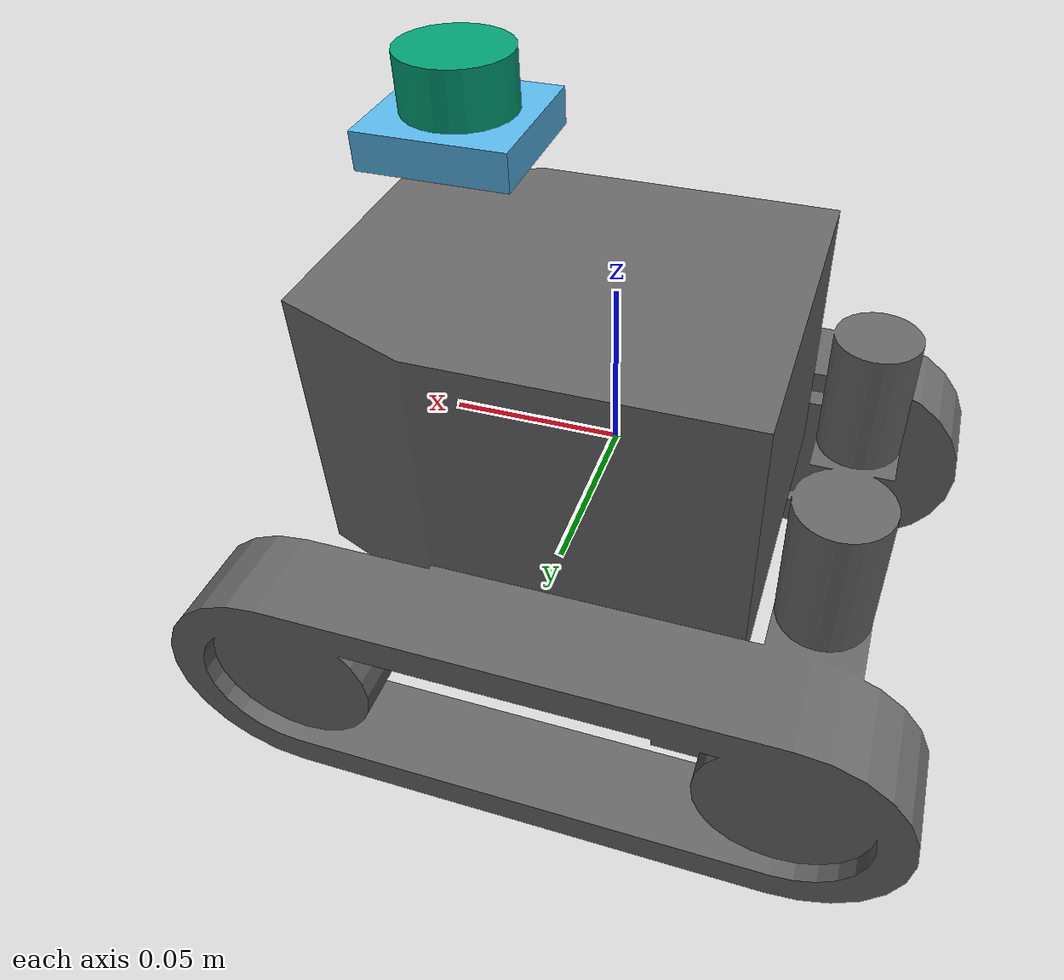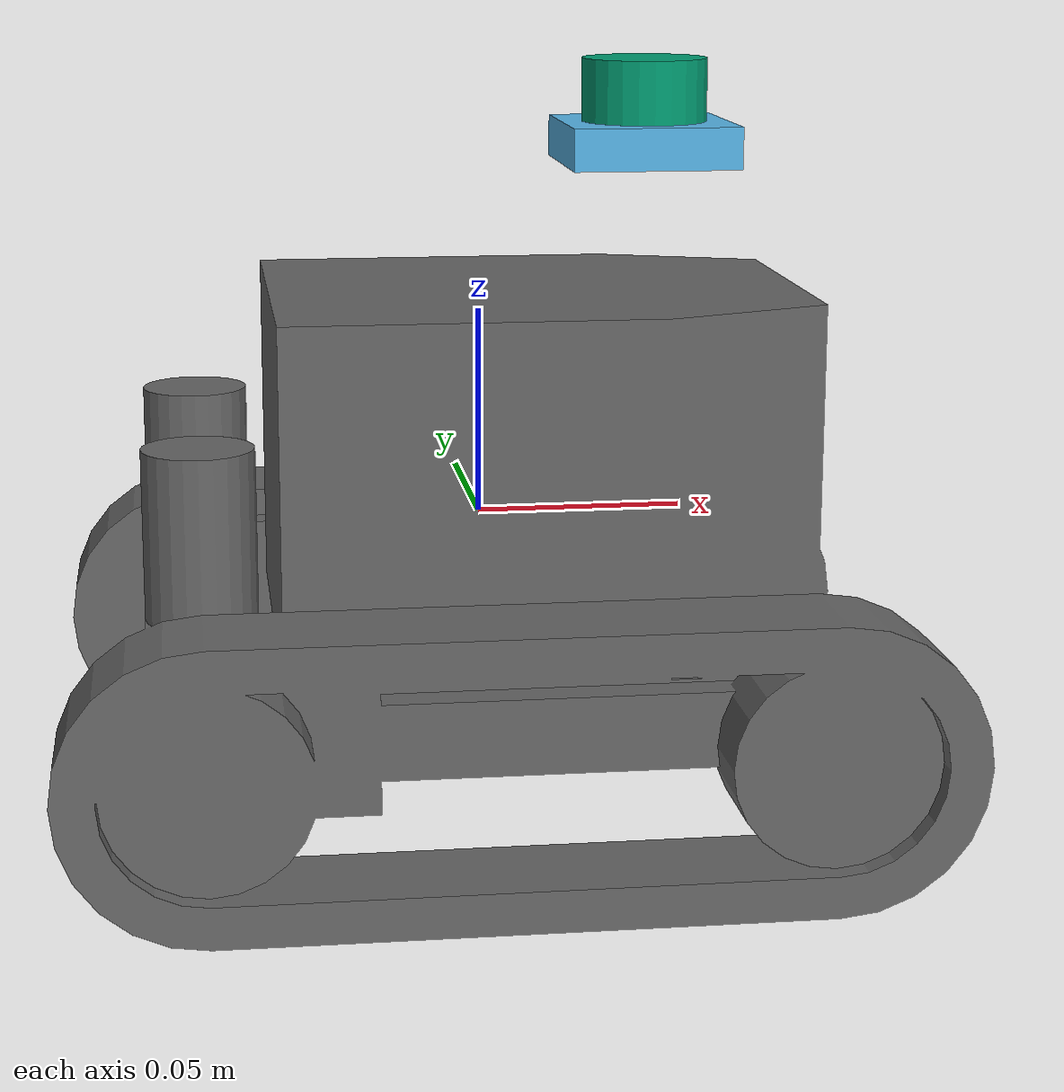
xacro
<?xml version="1.0"?>
<robot name="trip" xmlns:xacro="http://www.ros.org/wiki/xacro">
  <xacro:property name='PI_2' value='1.5707963267948966'/>
  <xacro:arg name="robot_name" default="trip" />

  <!-- Define the macro for the whole shelfino -->
  <xacro:macro name="trip" params='robot_name'>

      <xacro:include filename='components/chassis.xacro' />
      <xacro:include filename='components/lidar_scanner.xacro' />
      <xacro:include filename='components/camera.xacro' />
      <xacro:include filename='components/imu.xacro' />
      <xacro:include filename='components/wheels.xacro' />
      <xacro:include filename='components/trip.ros2_control.xacro' />
  </xacro:macro>

  <!-- Instantiate the model -->
  <xacro:trip robot_name="$(arg robot_name)" />

</robot>

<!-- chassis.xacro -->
<robot name="trip" xmlns:xacro="http://www.ros.org/wiki/xacro">
    <material name="light_black">
        <color rgba="0.4 0.4 0.4 1.0"/>
    </material>
    <material name="orange">
        <color rgba="1.0 0.4235 0.0392 1.0"/>
    </material>

    <!--  BASE LINK  -->
    <link name="${robot_name}/base_link">
    <inertial>
        <origin xyz="0 0 0" rpy="0 0 0"/>
        <mass value="5.0"/>
        <inertia
        ixx="0.05" ixy="0.0" ixz="0.0"
        iyy="0.05" iyz="0.0"
        izz="0.08"/>
    </inertial>

    <visual>
        <origin xyz="0.003 -0.002 -0.075" rpy="0 0 ${pi}"/>
        <geometry>
            <mesh filename="/home/davdori/trip_ws/src/TRIP-sim/trip_description/meshes/base_link.dae"/>
        </geometry>
        <material name="light_black"/>
    </visual>

    <collision>
        <origin xyz="-0.004 0 0" rpy="0 0 0"/>
        <geometry>
        <box size="0.16 0.103 0.11"/>
        </geometry>
    </collision>
    </link>
</robot>

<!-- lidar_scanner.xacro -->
<robot name="trip" xmlns:xacro="http://www.ros.org/wiki/xacro">

  <link name="${robot_name}/lidar_pitch_link">
    <visual>
      <geometry>
        <box size="0.04 0.04 0.01"/>
      </geometry>
    </visual>
    <inertial>
      <mass value="0.1"/>
      <inertia ixx="0.0005" iyy="0.0005" izz="0.0005"
              ixy="0" ixz="0" iyz="0"/>
    </inertial>
  </link>

  <link name="${robot_name}/lidar_link">
    <visual>
      <geometry>
        <cylinder radius="0.015" length="0.02"/>
      </geometry>
    </visual>
    <inertial>
      <mass value="0.01"/>
      <inertia
        ixx="1e-5" ixy="0.0" ixz="0.0"
        iyy="1e-5" iyz="0.0"
        izz="1e-5"/>
    </inertial>
  </link>

  <joint name="lidar_roll_joint" type="revolute">
    <parent link="${robot_name}/base_link"/>
    <child link="${robot_name}/lidar_pitch_link"/>
    <origin xyz="0.04 0 0.09" rpy="0 0 0"/>
    <axis xyz="1 0 0"/>
    <limit lower="-0.35" upper="0.35" effort="1.0" velocity="1.0"/>
  </joint>

  <joint name="lidar_mount_joint" type="fixed">
    <parent link="${robot_name}/lidar_pitch_link"/>
    <child link="${robot_name}/lidar_link"/>
    <origin xyz="0 0 0.01" rpy="0 0 0"/>
  </joint>

  <gazebo reference="${robot_name}/lidar_link">
    <sensor name="lidar_sensor" type="ray">
      <update_rate>10</update_rate>

      <ray>
        <scan>
          <horizontal>
            <samples>720</samples>
            <min_angle>-1.5708</min_angle>
            <max_angle>1.5708</max_angle>
          </horizontal>
        </scan>
        <range>
          <min>0.12</min>
          <max>30.0</max>
          <resolution>0.01</resolution>
        </range>
      </ray>

      <plugin name="trip_lidar_plugin" filename="libgazebo_ros_ray_sensor.so">
        <ros>
          <namespace>/trip</namespace>
          <remapping>~/out:=scan</remapping>
        </ros>
        <frame_name>lidar_link</frame_name>
        <output_type>sensor_msgs/LaserScan</output_type>
      </plugin>
    </sensor>
  </gazebo>

</robot>

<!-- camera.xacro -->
<robot name="trip" xmlns:xacro="http://www.ros.org/wiki/xacro">

  <link name="${robot_name}/camera_link">
    <inertial>
      <mass value="0.01"/>
      <inertia
        ixx="1e-5" ixy="0.0" ixz="0.0"
        iyy="1e-5" iyz="0.0"
        izz="1e-5"/>
    </inertial>
  </link>

  <joint name="camera_joint" type="fixed">
    <parent link="${robot_name}/base_link"/>
    <child link="${robot_name}/camera_link"/>
    <origin xyz="0.08 0 0.12" rpy="0 0 0"/>
  </joint>

  <gazebo reference="${robot_name}/camera_link">
    <sensor name="camera_sensor" type="camera">
      <update_rate>30</update_rate>
      <camera>
        <horizontal_fov>1.396</horizontal_fov>
        <image>
          <width>640</width>
          <height>480</height>
          <format>R8G8B8</format>
        </image>
        <clip><near>0.05</near><far>50</far></clip>
      </camera>

      <plugin name="trip_camera_plugin" filename="libgazebo_ros_camera.so">
        <ros><namespace>/trip</namespace></ros>
        <frame_name>camera_link</frame_name>
        <camera_name>camera</camera_name>
        <image_topic_name>image_raw</image_topic_name>
        <camera_info_topic_name>camera_info</camera_info_topic_name>
      </plugin>
    </sensor>
  </gazebo>

</robot>

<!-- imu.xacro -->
<robot name="trip" xmlns:xacro="http://www.ros.org/wiki/xacro">

  <link name="${robot_name}/imu_link">
    <inertial>
      <mass value="0.01"/>
      <inertia
        ixx="1e-5" ixy="0.0" ixz="0.0"
        iyy="1e-5" iyz="0.0"
        izz="1e-5"/>
    </inertial>
  </link>

  <joint name="imu_joint" type="fixed">
    <parent link="${robot_name}/base_link"/>
    <child link="${robot_name}/imu_link"/>
    <origin xyz="0 0 0.08" rpy="0 0 0"/>
  </joint>

  <gazebo reference="${robot_name}/imu_link">
    <sensor name="imu_sensor" type="imu">
      <always_on>true</always_on>
      <update_rate>200</update_rate>

      <imu>
        <angular_velocity>
          <x><noise type="gaussian"><stddev>0.002</stddev></noise></x>
          <y><noise type="gaussian"><stddev>0.002</stddev></noise></y>
          <z><noise type="gaussian"><stddev>0.002</stddev></noise></z>
        </angular_velocity>
        <linear_acceleration>
          <x><noise type="gaussian"><stddev>0.03</stddev></noise></x>
          <y><noise type="gaussian"><stddev>0.03</stddev></noise></y>
          <z><noise type="gaussian"><stddev>0.03</stddev></noise></z>
        </linear_acceleration>
      </imu>

      <plugin name="imu_plugin" filename="libgazebo_ros_imu_sensor.so">
        <ros>
          <namespace>/trip</namespace>
          <remapping>~/out:=imu</remapping>
        </ros>
        <frame_name>${robot_name}/imu_link</frame_name>
      </plugin>
    </sensor>
  </gazebo>
</robot>

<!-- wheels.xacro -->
<robot name="trip" xmlns:xacro="http://www.ros.org/wiki/xacro">

    <xacro:property name='wheel_x_offset' value='0.07'/>
    <xacro:property name='wheel_y_offset' value='0.0716'/>
    <xacro:property name='wheel_radius' value='0.034'/>

    <xacro:macro name="wheel" params="name x y">
    <link name="${name}">
        <collision>
        <geometry>
            <cylinder radius="${wheel_radius}" length="0.027"/>
        </geometry>
        </collision>

        <inertial>
        <mass value="0.1"/>
        <inertia
            ixx="1e-4" ixy="0" ixz="0"
            iyy="1e-4" iyz="0"
            izz="1e-4"/>
        </inertial>
    </link>

    <joint name="${name}_joint" type="continuous">
        <parent link="${robot_name}/base_link"/>
        <child link="${name}"/>
        <origin xyz="${x} ${y} -0.042" rpy="0 ${pi/2} ${pi/2}"/>
        <axis xyz="0 0 1"/>
    </joint>
    </xacro:macro>

    <xacro:wheel name="right_front_wheel" x="${wheel_x_offset}"  y="${-wheel_y_offset}"/>
    <xacro:wheel name="left_front_wheel"  x="${wheel_x_offset}"  y="${wheel_y_offset}"/>
    <xacro:wheel name="right_rear_wheel"  x="${-wheel_x_offset}" y="${-wheel_y_offset}"/>
    <xacro:wheel name="left_rear_wheel"   x="${-wheel_x_offset}" y="${wheel_y_offset}"/>

</robot>
